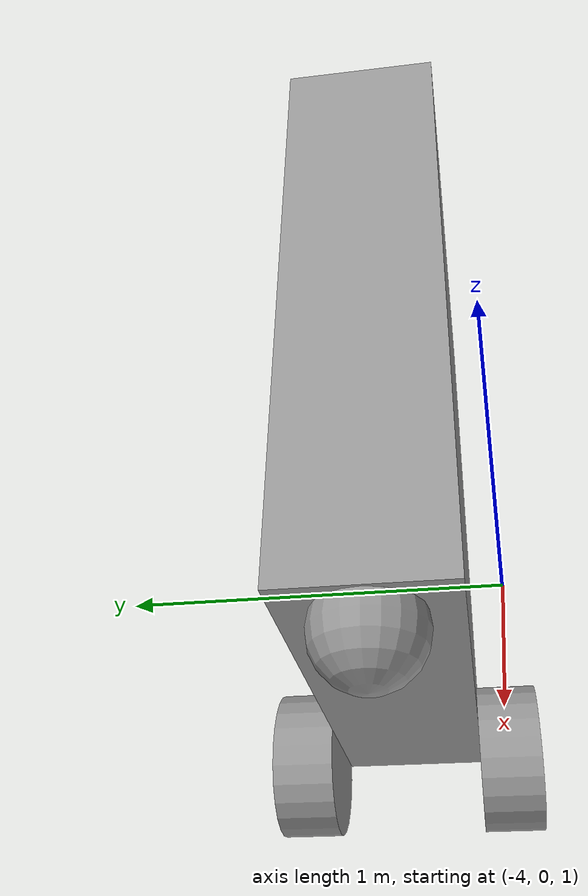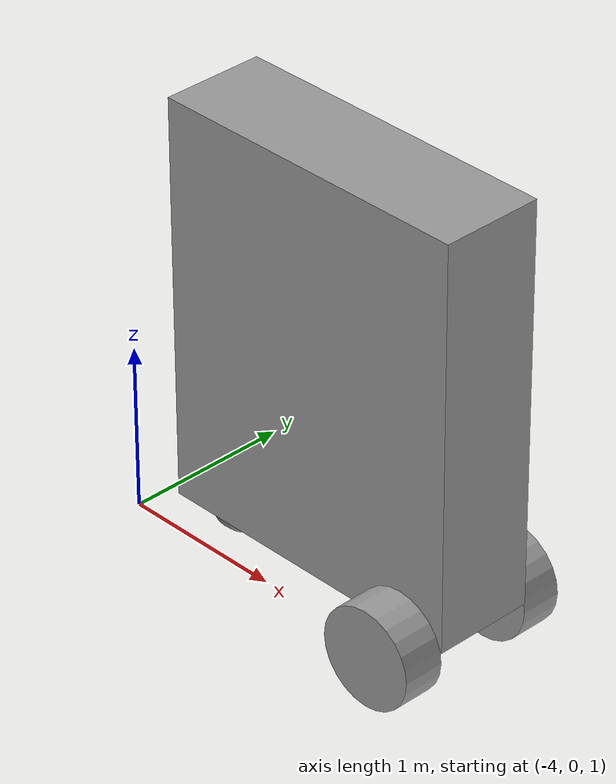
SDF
<?xml version='1.0'?>
<sdf version='1.7'>
  <model name='robot'>
    <link name='link_2'>
      <inertial>
        <mass>2.966</mass>
        <inertia>
          <ixx>1.5609</ixx>
          <ixy>0</ixy>
          <ixz>0</ixz>
          <iyy>2.44405</iyy>
          <iyz>0</iyz>
          <izz>1.06855</izz>
        </inertia>
        <pose>0 0 0 0 -0 0</pose>
      </inertial>
      <pose>-2.7986 0.406922 2.34548 0 -0 0</pose>
      <gravity>1</gravity>
      <self_collide>0</self_collide>
      <kinematic>0</kinematic>
      <enable_wind>0</enable_wind>
      <visual name='visual'>
        <pose>0 0 0 0 -0 0</pose>
        <geometry>
          <box>
            <size>1.98699 0.612426 2.43723</size>
          </box>
        </geometry>
        <material>
          <lighting>1</lighting>
          <script>
            <uri>file://media/materials/scripts/gazebo.material</uri>
            <name>Gazebo/Grey</name>
          </script>
          <shader type='pixel'>
            <normal_map>__default__</normal_map>
          </shader>
          <ambient>0.3 0.3 0.3 1</ambient>
          <diffuse>0.7 0.7 0.7 1</diffuse>
          <specular>0.01 0.01 0.01 1</specular>
          <emissive>0 0 0 1</emissive>
        </material>
        <transparency>0</transparency>
        <cast_shadows>1</cast_shadows>
      </visual>
      <collision name='collision'>
        <laser_retro>0</laser_retro>
        <max_contacts>10</max_contacts>
        <pose>0 0 0 0 -0 0</pose>
        <geometry>
          <box>
            <size>1.98699 0.612426 2.43723</size>
          </box>
        </geometry>
        <surface>
          <friction>
            <ode>
              <mu>1</mu>
              <mu2>1</mu2>
              <fdir1>0 0 0</fdir1>
              <slip1>0</slip1>
              <slip2>0</slip2>
            </ode>
            <torsional>
              <coefficient>1</coefficient>
              <patch_radius>0</patch_radius>
              <surface_radius>0</surface_radius>
              <use_patch_radius>1</use_patch_radius>
              <ode>
                <slip>0</slip>
              </ode>
            </torsional>
          </friction>
          <bounce>
            <restitution_coefficient>0</restitution_coefficient>
            <threshold>1e+06</threshold>
          </bounce>
          <contact>
            <collide_without_contact>0</collide_without_contact>
            <collide_without_contact_bitmask>1</collide_without_contact_bitmask>
            <collide_bitmask>1</collide_bitmask>
            <ode>
              <soft_cfm>0</soft_cfm>
              <soft_erp>0.2</soft_erp>
              <kp>1e+13</kp>
              <kd>1</kd>
              <max_vel>0.01</max_vel>
              <min_depth>0</min_depth>
            </ode>
            <bullet>
              <split_impulse>1</split_impulse>
              <split_impulse_penetration_threshold>-0.01</split_impulse_penetration_threshold>
              <soft_cfm>0</soft_cfm>
              <soft_erp>0.2</soft_erp>
              <kp>1e+13</kp>
              <kd>1</kd>
            </bullet>
          </contact>
        </surface>
      </collision>
    </link>
    <link name='link_3'>
      <inertial>
        <mass>1</mass>
        <inertia>
          <ixx>0.145833</ixx>
          <ixy>0</ixy>
          <ixz>0</ixz>
          <iyy>0.145833</iyy>
          <iyz>0</iyz>
          <izz>0.125</izz>
        </inertia>
        <pose>0 0 0 0 -0 0</pose>
      </inertial>
      <pose>-2.1051 -0.024319 1.06235 1.5707 -0 0</pose>
      <gravity>1</gravity>
      <self_collide>0</self_collide>
      <kinematic>0</kinematic>
      <enable_wind>0</enable_wind>
      <visual name='visual'>
        <pose>0 0 0 0 -0 0</pose>
        <geometry>
          <cylinder>
            <radius>0.3</radius>
            <length>0.25</length>
          </cylinder>
        </geometry>
        <material>
          <lighting>1</lighting>
          <script>
            <uri>file://media/materials/scripts/gazebo.material</uri>
            <name>Gazebo/Grey</name>
          </script>
          <shader type='pixel'>
            <normal_map>__default__</normal_map>
          </shader>
          <ambient>0.3 0.3 0.3 1</ambient>
          <diffuse>0.7 0.7 0.7 1</diffuse>
          <specular>0.01 0.01 0.01 1</specular>
          <emissive>0 0 0 1</emissive>
        </material>
        <transparency>0</transparency>
        <cast_shadows>1</cast_shadows>
      </visual>
      <collision name='collision'>
        <laser_retro>0</laser_retro>
        <max_contacts>10</max_contacts>
        <pose>0 0 0 0 -0 0</pose>
        <geometry>
          <cylinder>
            <radius>0.3</radius>
            <length>0.25</length>
          </cylinder>
        </geometry>
        <surface>
          <friction>
            <ode>
              <mu>1</mu>
              <mu2>1</mu2>
              <fdir1>0 0 0</fdir1>
              <slip1>0</slip1>
              <slip2>0</slip2>
            </ode>
            <torsional>
              <coefficient>1</coefficient>
              <patch_radius>0</patch_radius>
              <surface_radius>0</surface_radius>
              <use_patch_radius>1</use_patch_radius>
              <ode>
                <slip>0</slip>
              </ode>
            </torsional>
          </friction>
          <bounce>
            <restitution_coefficient>0</restitution_coefficient>
            <threshold>1e+06</threshold>
          </bounce>
          <contact>
            <collide_without_contact>0</collide_without_contact>
            <collide_without_contact_bitmask>1</collide_without_contact_bitmask>
            <collide_bitmask>1</collide_bitmask>
            <ode>
              <soft_cfm>0</soft_cfm>
              <soft_erp>0.2</soft_erp>
              <kp>1e+13</kp>
              <kd>1</kd>
              <max_vel>0.01</max_vel>
              <min_depth>0</min_depth>
            </ode>
            <bullet>
              <split_impulse>1</split_impulse>
              <split_impulse_penetration_threshold>-0.01</split_impulse_penetration_threshold>
              <soft_cfm>0</soft_cfm>
              <soft_erp>0.2</soft_erp>
              <kp>1e+13</kp>
              <kd>1</kd>
            </bullet>
          </contact>
        </surface>
      </collision>
    </link>
    <link name='link_3_clone'>
      <inertial>
        <mass>1</mass>
        <inertia>
          <ixx>0.145833</ixx>
          <ixy>0</ixy>
          <ixz>0</ixz>
          <iyy>0.145833</iyy>
          <iyz>0</iyz>
          <izz>0.125</izz>
        </inertia>
        <pose>0 0 0 0 -0 0</pose>
      </inertial>
      <pose>-2.1051 0.838164 1.06235 1.5707 -0 0</pose>
      <gravity>1</gravity>
      <self_collide>0</self_collide>
      <kinematic>0</kinematic>
      <enable_wind>0</enable_wind>
      <visual name='visual'>
        <pose>0 0 0 0 -0 0</pose>
        <geometry>
          <cylinder>
            <radius>0.3</radius>
            <length>0.25</length>
          </cylinder>
        </geometry>
        <material>
          <lighting>1</lighting>
          <script>
            <uri>file://media/materials/scripts/gazebo.material</uri>
            <name>Gazebo/Grey</name>
          </script>
          <shader type='pixel'>
            <normal_map>__default__</normal_map>
          </shader>
          <ambient>0.3 0.3 0.3 1</ambient>
          <diffuse>0.7 0.7 0.7 1</diffuse>
          <specular>0.01 0.01 0.01 1</specular>
          <emissive>0 0 0 1</emissive>
        </material>
        <transparency>0</transparency>
        <cast_shadows>1</cast_shadows>
      </visual>
      <collision name='collision'>
        <laser_retro>0</laser_retro>
        <max_contacts>10</max_contacts>
        <pose>0 0 0 0 -0 0</pose>
        <geometry>
          <cylinder>
            <radius>0.3</radius>
            <length>0.25</length>
          </cylinder>
        </geometry>
        <surface>
          <friction>
            <ode>
              <mu>1</mu>
              <mu2>1</mu2>
              <fdir1>0 0 0</fdir1>
              <slip1>0</slip1>
              <slip2>0</slip2>
            </ode>
            <torsional>
              <coefficient>1</coefficient>
              <patch_radius>0</patch_radius>
              <surface_radius>0</surface_radius>
              <use_patch_radius>1</use_patch_radius>
              <ode>
                <slip>0</slip>
              </ode>
            </torsional>
          </friction>
          <bounce>
            <restitution_coefficient>0</restitution_coefficient>
            <threshold>1e+06</threshold>
          </bounce>
          <contact>
            <collide_without_contact>0</collide_without_contact>
            <collide_without_contact_bitmask>1</collide_without_contact_bitmask>
            <collide_bitmask>1</collide_bitmask>
            <ode>
              <soft_cfm>0</soft_cfm>
              <soft_erp>0.2</soft_erp>
              <kp>1e+13</kp>
              <kd>1</kd>
              <max_vel>0.01</max_vel>
              <min_depth>0</min_depth>
            </ode>
            <bullet>
              <split_impulse>1</split_impulse>
              <split_impulse_penetration_threshold>-0.01</split_impulse_penetration_threshold>
              <soft_cfm>0</soft_cfm>
              <soft_erp>0.2</soft_erp>
              <kp>1e+13</kp>
              <kd>1</kd>
            </bullet>
          </contact>
        </surface>
      </collision>
    </link>
    <link name='link_4'>
      <inertial>
        <mass>1</mass>
        <inertia>
          <ixx>0.1</ixx>
          <ixy>0</ixy>
          <ixz>0</ixz>
          <iyy>0.1</iyy>
          <iyz>0</iyz>
          <izz>0.1</izz>
        </inertia>
        <pose>0 0 0 0 -0 0</pose>
      </inertial>
      <pose>-3.5921 0.406923 1.06235 0 -0 0</pose>
      <gravity>1</gravity>
      <self_collide>0</self_collide>
      <kinematic>0</kinematic>
      <enable_wind>0</enable_wind>
      <visual name='visual'>
        <pose>0 0 0 0 -0 0</pose>
        <geometry>
          <sphere>
            <radius>0.2</radius>
          </sphere>
        </geometry>
        <material>
          <lighting>1</lighting>
          <script>
            <uri>file://media/materials/scripts/gazebo.material</uri>
            <name>Gazebo/Grey</name>
          </script>
          <shader type='pixel'>
            <normal_map>__default__</normal_map>
          </shader>
          <ambient>0.3 0.3 0.3 1</ambient>
          <diffuse>0.7 0.7 0.7 1</diffuse>
          <specular>0.01 0.01 0.01 1</specular>
          <emissive>0 0 0 1</emissive>
        </material>
        <transparency>0</transparency>
        <cast_shadows>1</cast_shadows>
      </visual>
      <collision name='collision'>
        <laser_retro>0</laser_retro>
        <max_contacts>10</max_contacts>
        <pose>0 0 0 0 -0 0</pose>
        <geometry>
          <sphere>
            <radius>0.2</radius>
          </sphere>
        </geometry>
        <surface>
          <friction>
            <ode>
              <mu>1</mu>
              <mu2>1</mu2>
              <fdir1>0 0 0</fdir1>
              <slip1>0</slip1>
              <slip2>0</slip2>
            </ode>
            <torsional>
              <coefficient>1</coefficient>
              <patch_radius>0</patch_radius>
              <surface_radius>0</surface_radius>
              <use_patch_radius>1</use_patch_radius>
              <ode>
                <slip>0</slip>
              </ode>
            </torsional>
          </friction>
          <bounce>
            <restitution_coefficient>0</restitution_coefficient>
            <threshold>1e+06</threshold>
          </bounce>
          <contact>
            <collide_without_contact>0</collide_without_contact>
            <collide_without_contact_bitmask>1</collide_without_contact_bitmask>
            <collide_bitmask>1</collide_bitmask>
            <ode>
              <soft_cfm>0</soft_cfm>
              <soft_erp>0.2</soft_erp>
              <kp>1e+13</kp>
              <kd>1</kd>
              <max_vel>0.01</max_vel>
              <min_depth>0</min_depth>
            </ode>
            <bullet>
              <split_impulse>1</split_impulse>
              <split_impulse_penetration_threshold>-0.01</split_impulse_penetration_threshold>
              <soft_cfm>0</soft_cfm>
              <soft_erp>0.2</soft_erp>
              <kp>1e+13</kp>
              <kd>1</kd>
            </bullet>
          </contact>
        </surface>
      </collision>
    </link>
    <joint name='link_2_JOINT_0' type='revolute'>
      <parent>link_2</parent>
      <child>link_3_clone</child>
      <pose>0 0 0 0.02 -0 0</pose>
      <axis>
        <xyz>0 0 1</xyz>
        <limit>
          <lower>-1.79769e+308</lower>
          <upper>1.79769e+308</upper>
          <effort>-1</effort>
          <velocity>-1</velocity>
        </limit>
        <dynamics>
          <spring_reference>0</spring_reference>
          <spring_stiffness>0</spring_stiffness>
          <damping>0</damping>
        </dynamics>
      </axis>
      <physics>
        <ode>
          <limit>
            <cfm>0</cfm>
            <erp>0.2</erp>
          </limit>
          <suspension>
            <cfm>0</cfm>
            <erp>0.2</erp>
          </suspension>
        </ode>
      </physics>
    </joint>
    <joint name='link_2_JOINT_1' type='revolute'>
      <parent>link_2</parent>
      <child>link_3</child>
      <pose>0 0 0 0 -0 0</pose>
      <axis>
        <xyz>1 0 0</xyz>
        <limit>
          <lower>-1.79769e+308</lower>
          <upper>1.79769e+308</upper>
          <effort>-1</effort>
          <velocity>-1</velocity>
        </limit>
        <dynamics>
          <spring_reference>0</spring_reference>
          <spring_stiffness>0</spring_stiffness>
          <damping>0</damping>
        </dynamics>
      </axis>
      <physics>
        <ode>
          <limit>
            <cfm>0</cfm>
            <erp>0.2</erp>
          </limit>
          <suspension>
            <cfm>0</cfm>
            <erp>0.2</erp>
          </suspension>
        </ode>
      </physics>
    </joint>
    <joint name='link_2_JOINT_2' type='revolute'>
      <parent>link_2</parent>
      <child>link_3</child>
      <pose>0 0 0 0 -0 0</pose>
      <axis>
        <xyz>1 0 0</xyz>
        <limit>
          <lower>-1.79769e+308</lower>
          <upper>1.79769e+308</upper>
          <effort>-1</effort>
          <velocity>-1</velocity>
        </limit>
        <dynamics>
          <spring_reference>0</spring_reference>
          <spring_stiffness>0</spring_stiffness>
          <damping>0</damping>
        </dynamics>
      </axis>
      <physics>
        <ode>
          <limit>
            <cfm>0</cfm>
            <erp>0.2</erp>
          </limit>
          <suspension>
            <cfm>0</cfm>
            <erp>0.2</erp>
          </suspension>
        </ode>
      </physics>
    </joint>
    <joint name='link_2_JOINT_3' type='revolute'>
      <parent>link_2</parent>
      <child>link_3_clone</child>
      <pose>0 0 0 0 -0 0</pose>
      <axis>
        <xyz>1 0 0</xyz>
        <limit>
          <lower>-1.79769e+308</lower>
          <upper>1.79769e+308</upper>
          <effort>-1</effort>
          <velocity>-1</velocity>
        </limit>
        <dynamics>
          <spring_reference>0</spring_reference>
          <spring_stiffness>0</spring_stiffness>
          <damping>0</damping>
        </dynamics>
      </axis>
      <physics>
        <ode>
          <limit>
            <cfm>0</cfm>
            <erp>0.2</erp>
          </limit>
          <suspension>
            <cfm>0</cfm>
            <erp>0.2</erp>
          </suspension>
        </ode>
      </physics>
    </joint>
    <joint name='link_2_JOINT_4' type='ball'>
      <parent>link_2</parent>
      <child>link_4</child>
      <pose>0 0 0 0 -0 0</pose>
      <physics>
        <ode>
          <limit>
            <cfm>0</cfm>
            <erp>0.2</erp>
          </limit>
          <suspension>
            <cfm>0</cfm>
            <erp>0.2</erp>
          </suspension>
        </ode>
      </physics>
    </joint>
    <static>0</static>
    <allow_auto_disable>1</allow_auto_disable>
  </model>
</sdf>
